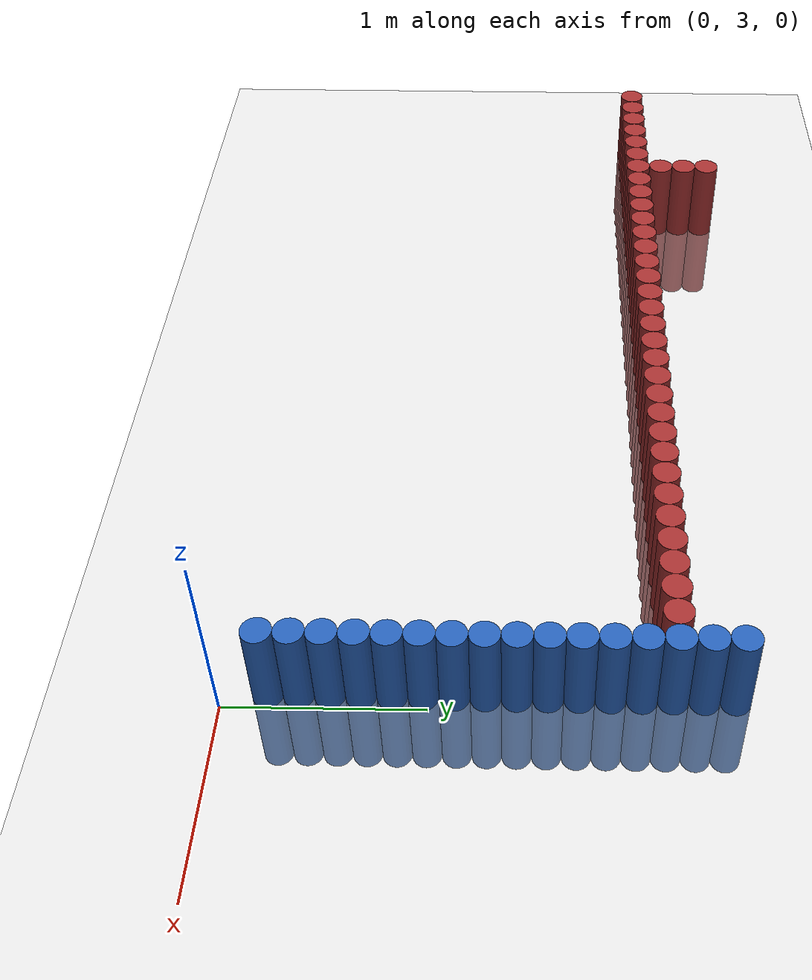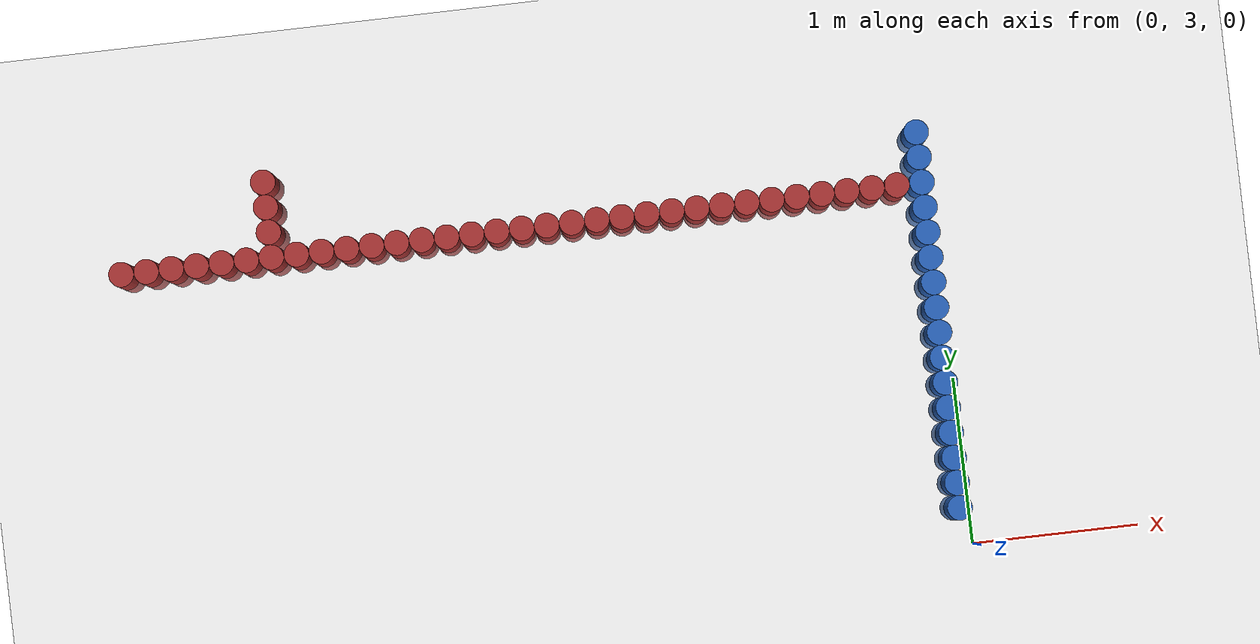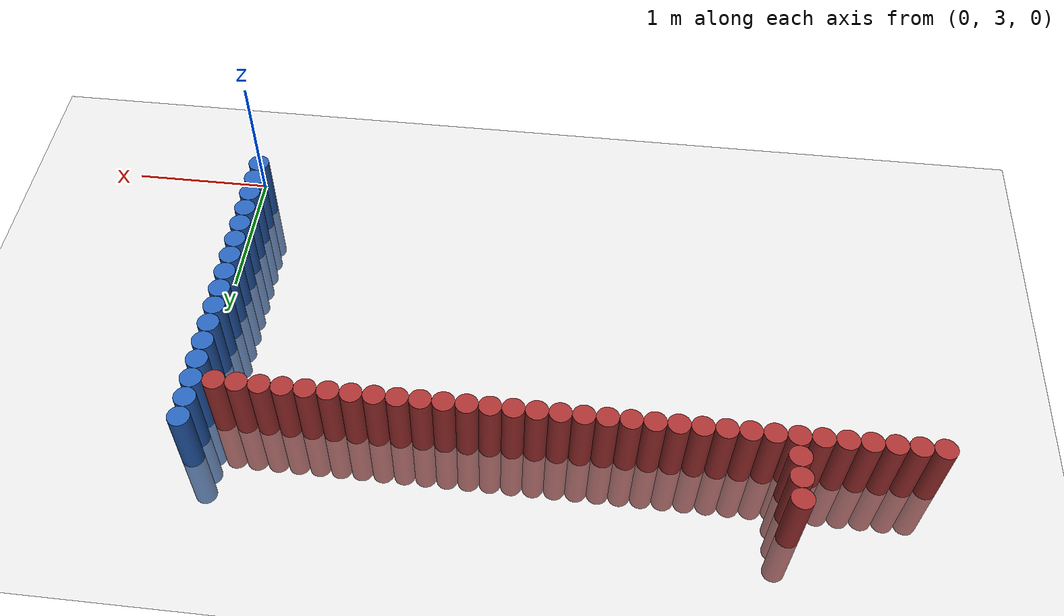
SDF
<sdf version="1.6">
 <world name="default">
  <model name="ground_plane">
   <static>1</static>
   <link name="link">
    <collision name="collision">
     <geometry><plane><normal>0 0 1</normal><size>100 100</size></plane></geometry>
     <surface><friction><ode><mu>100</mu><mu2>50</mu2></ode></friction></surface>
    </collision>
    <visual name="visual">
     <cast_shadows>0</cast_shadows>
     <geometry><plane><normal>0 0 1</normal><size>100 100</size></plane></geometry>
     <material>
      <script><uri>file://media/materials/scripts/gazebo.material</uri><name>Gazebo/Grey</name></script>
     </material>
    </visual>
   </link>
  </model>
  <model name="unit_cylinder_99">
   <static>1</static>
   <pose>-0.075000 3.225000 0.000000 0.000000 0.000000 0.000000</pose>
   <link name="link">
    <inertial>
     <mass>1</mass>
     <inertia><ixx>0.145833</ixx><ixy>0</ixy><ixz>0</ixz><iyy>0.145833</iyy><iyz>0</iyz><izz>0.125</izz></inertia>
    </inertial>
    <collision name="collision">
     <geometry><cylinder><radius>0.075000</radius><length>1</length></cylinder></geometry>
    </collision>
    <visual name="visual">
     <geometry><cylinder><radius>0.075000</radius><length>1</length></cylinder></geometry>
     <material>
      <ambient>0.152000 0.379000 0.720000 1</ambient>
      <diffuse>0.152000 0.379000 0.720000 1</diffuse>
     </material>
     <material>
      <script><name>Gazebo/Grey</name><uri>file://media/materials/scripts/gazebo.material</uri></script>
     </material>
    </visual>
   </link>
  </model>
  <model name="unit_cylinder_101">
   <static>1</static>
   <pose>-0.075000 3.375000 0.000000 0.000000 0.000000 0.000000</pose>
   <link name="link">
    <inertial>
     <mass>1</mass>
     <inertia><ixx>0.145833</ixx><ixy>0</ixy><ixz>0</ixz><iyy>0.145833</iyy><iyz>0</iyz><izz>0.125</izz></inertia>
    </inertial>
    <collision name="collision">
     <geometry><cylinder><radius>0.075000</radius><length>1</length></cylinder></geometry>
    </collision>
    <visual name="visual">
     <geometry><cylinder><radius>0.075000</radius><length>1</length></cylinder></geometry>
     <material>
      <ambient>0.152000 0.379000 0.720000 1</ambient>
      <diffuse>0.152000 0.379000 0.720000 1</diffuse>
     </material>
     <material>
      <script><name>Gazebo/Grey</name><uri>file://media/materials/scripts/gazebo.material</uri></script>
     </material>
    </visual>
   </link>
  </model>
  <model name="unit_cylinder_103">
   <static>1</static>
   <pose>-0.075000 3.525000 0.000000 0.000000 0.000000 0.000000</pose>
   <link name="link">
    <inertial>
     <mass>1</mass>
     <inertia><ixx>0.145833</ixx><ixy>0</ixy><ixz>0</ixz><iyy>0.145833</iyy><iyz>0</iyz><izz>0.125</izz></inertia>
    </inertial>
    <collision name="collision">
     <geometry><cylinder><radius>0.075000</radius><length>1</length></cylinder></geometry>
    </collision>
    <visual name="visual">
     <geometry><cylinder><radius>0.075000</radius><length>1</length></cylinder></geometry>
     <material>
      <ambient>0.152000 0.379000 0.720000 1</ambient>
      <diffuse>0.152000 0.379000 0.720000 1</diffuse>
     </material>
     <material>
      <script><name>Gazebo/Grey</name><uri>file://media/materials/scripts/gazebo.material</uri></script>
     </material>
    </visual>
   </link>
  </model>
  <model name="unit_cylinder_105">
   <static>1</static>
   <pose>-0.075000 3.675000 0.000000 0.000000 0.000000 0.000000</pose>
   <link name="link">
    <inertial>
     <mass>1</mass>
     <inertia><ixx>0.145833</ixx><ixy>0</ixy><ixz>0</ixz><iyy>0.145833</iyy><iyz>0</iyz><izz>0.125</izz></inertia>
    </inertial>
    <collision name="collision">
     <geometry><cylinder><radius>0.075000</radius><length>1</length></cylinder></geometry>
    </collision>
    <visual name="visual">
     <geometry><cylinder><radius>0.075000</radius><length>1</length></cylinder></geometry>
     <material>
      <ambient>0.152000 0.379000 0.720000 1</ambient>
      <diffuse>0.152000 0.379000 0.720000 1</diffuse>
     </material>
     <material>
      <script><name>Gazebo/Grey</name><uri>file://media/materials/scripts/gazebo.material</uri></script>
     </material>
    </visual>
   </link>
  </model>
  <model name="unit_cylinder_107">
   <static>1</static>
   <pose>-0.075000 3.825000 0.000000 0.000000 0.000000 0.000000</pose>
   <link name="link">
    <inertial>
     <mass>1</mass>
     <inertia><ixx>0.145833</ixx><ixy>0</ixy><ixz>0</ixz><iyy>0.145833</iyy><iyz>0</iyz><izz>0.125</izz></inertia>
    </inertial>
    <collision name="collision">
     <geometry><cylinder><radius>0.075000</radius><length>1</length></cylinder></geometry>
    </collision>
    <visual name="visual">
     <geometry><cylinder><radius>0.075000</radius><length>1</length></cylinder></geometry>
     <material>
      <ambient>0.152000 0.379000 0.720000 1</ambient>
      <diffuse>0.152000 0.379000 0.720000 1</diffuse>
     </material>
     <material>
      <script><name>Gazebo/Grey</name><uri>file://media/materials/scripts/gazebo.material</uri></script>
     </material>
    </visual>
   </link>
  </model>
  <model name="unit_cylinder_109">
   <static>1</static>
   <pose>-0.075000 3.975000 0.000000 0.000000 0.000000 0.000000</pose>
   <link name="link">
    <inertial>
     <mass>1</mass>
     <inertia><ixx>0.145833</ixx><ixy>0</ixy><ixz>0</ixz><iyy>0.145833</iyy><iyz>0</iyz><izz>0.125</izz></inertia>
    </inertial>
    <collision name="collision">
     <geometry><cylinder><radius>0.075000</radius><length>1</length></cylinder></geometry>
    </collision>
    <visual name="visual">
     <geometry><cylinder><radius>0.075000</radius><length>1</length></cylinder></geometry>
     <material>
      <ambient>0.152000 0.379000 0.720000 1</ambient>
      <diffuse>0.152000 0.379000 0.720000 1</diffuse>
     </material>
     <material>
      <script><name>Gazebo/Grey</name><uri>file://media/materials/scripts/gazebo.material</uri></script>
     </material>
    </visual>
   </link>
  </model>
  <model name="unit_cylinder_111">
   <static>1</static>
   <pose>-0.075000 4.125000 0.000000 0.000000 0.000000 0.000000</pose>
   <link name="link">
    <inertial>
     <mass>1</mass>
     <inertia><ixx>0.145833</ixx><ixy>0</ixy><ixz>0</ixz><iyy>0.145833</iyy><iyz>0</iyz><izz>0.125</izz></inertia>
    </inertial>
    <collision name="collision">
     <geometry><cylinder><radius>0.075000</radius><length>1</length></cylinder></geometry>
    </collision>
    <visual name="visual">
     <geometry><cylinder><radius>0.075000</radius><length>1</length></cylinder></geometry>
     <material>
      <ambient>0.152000 0.379000 0.720000 1</ambient>
      <diffuse>0.152000 0.379000 0.720000 1</diffuse>
     </material>
     <material>
      <script><name>Gazebo/Grey</name><uri>file://media/materials/scripts/gazebo.material</uri></script>
     </material>
    </visual>
   </link>
  </model>
  <model name="unit_cylinder_113">
   <static>1</static>
   <pose>-0.075000 4.275000 0.000000 0.000000 0.000000 0.000000</pose>
   <link name="link">
    <inertial>
     <mass>1</mass>
     <inertia><ixx>0.145833</ixx><ixy>0</ixy><ixz>0</ixz><iyy>0.145833</iyy><iyz>0</iyz><izz>0.125</izz></inertia>
    </inertial>
    <collision name="collision">
     <geometry><cylinder><radius>0.075000</radius><length>1</length></cylinder></geometry>
    </collision>
    <visual name="visual">
     <geometry><cylinder><radius>0.075000</radius><length>1</length></cylinder></geometry>
     <material>
      <ambient>0.152000 0.379000 0.720000 1</ambient>
      <diffuse>0.152000 0.379000 0.720000 1</diffuse>
     </material>
     <material>
      <script><name>Gazebo/Grey</name><uri>file://media/materials/scripts/gazebo.material</uri></script>
     </material>
    </visual>
   </link>
  </model>
  <model name="unit_cylinder_115">
   <static>1</static>
   <pose>-0.075000 4.425000 0.000000 0.000000 0.000000 0.000000</pose>
   <link name="link">
    <inertial>
     <mass>1</mass>
     <inertia><ixx>0.145833</ixx><ixy>0</ixy><ixz>0</ixz><iyy>0.145833</iyy><iyz>0</iyz><izz>0.125</izz></inertia>
    </inertial>
    <collision name="collision">
     <geometry><cylinder><radius>0.075000</radius><length>1</length></cylinder></geometry>
    </collision>
    <visual name="visual">
     <geometry><cylinder><radius>0.075000</radius><length>1</length></cylinder></geometry>
     <material>
      <ambient>0.152000 0.379000 0.720000 1</ambient>
      <diffuse>0.152000 0.379000 0.720000 1</diffuse>
     </material>
     <material>
      <script><name>Gazebo/Grey</name><uri>file://media/materials/scripts/gazebo.material</uri></script>
     </material>
    </visual>
   </link>
  </model>
  <model name="unit_cylinder_117">
   <static>1</static>
   <pose>-0.075000 4.575000 0.000000 0.000000 0.000000 0.000000</pose>
   <link name="link">
    <inertial>
     <mass>1</mass>
     <inertia><ixx>0.145833</ixx><ixy>0</ixy><ixz>0</ixz><iyy>0.145833</iyy><iyz>0</iyz><izz>0.125</izz></inertia>
    </inertial>
    <collision name="collision">
     <geometry><cylinder><radius>0.075000</radius><length>1</length></cylinder></geometry>
    </collision>
    <visual name="visual">
     <geometry><cylinder><radius>0.075000</radius><length>1</length></cylinder></geometry>
     <material>
      <ambient>0.152000 0.379000 0.720000 1</ambient>
      <diffuse>0.152000 0.379000 0.720000 1</diffuse>
     </material>
     <material>
      <script><name>Gazebo/Grey</name><uri>file://media/materials/scripts/gazebo.material</uri></script>
     </material>
    </visual>
   </link>
  </model>
  <model name="unit_cylinder_119">
   <static>1</static>
   <pose>-0.075000 4.725000 0.000000 0.000000 0.000000 0.000000</pose>
   <link name="link">
    <inertial>
     <mass>1</mass>
     <inertia><ixx>0.145833</ixx><ixy>0</ixy><ixz>0</ixz><iyy>0.145833</iyy><iyz>0</iyz><izz>0.125</izz></inertia>
    </inertial>
    <collision name="collision">
     <geometry><cylinder><radius>0.075000</radius><length>1</length></cylinder></geometry>
    </collision>
    <visual name="visual">
     <geometry><cylinder><radius>0.075000</radius><length>1</length></cylinder></geometry>
     <material>
      <ambient>0.152000 0.379000 0.720000 1</ambient>
      <diffuse>0.152000 0.379000 0.720000 1</diffuse>
     </material>
     <material>
      <script><name>Gazebo/Grey</name><uri>file://media/materials/scripts/gazebo.material</uri></script>
     </material>
    </visual>
   </link>
  </model>
  <model name="unit_cylinder_121">
   <static>1</static>
   <pose>-0.075000 4.875000 0.000000 0.000000 0.000000 0.000000</pose>
   <link name="link">
    <inertial>
     <mass>1</mass>
     <inertia><ixx>0.145833</ixx><ixy>0</ixy><ixz>0</ixz><iyy>0.145833</iyy><iyz>0</iyz><izz>0.125</izz></inertia>
    </inertial>
    <collision name="collision">
     <geometry><cylinder><radius>0.075000</radius><length>1</length></cylinder></geometry>
    </collision>
    <visual name="visual">
     <geometry><cylinder><radius>0.075000</radius><length>1</length></cylinder></geometry>
     <material>
      <ambient>0.152000 0.379000 0.720000 1</ambient>
      <diffuse>0.152000 0.379000 0.720000 1</diffuse>
     </material>
     <material>
      <script><name>Gazebo/Grey</name><uri>file://media/materials/scripts/gazebo.material</uri></script>
     </material>
    </visual>
   </link>
  </model>
  <model name="unit_cylinder_123">
   <static>1</static>
   <pose>-0.075000 5.025000 0.000000 0.000000 0.000000 0.000000</pose>
   <link name="link">
    <inertial>
     <mass>1</mass>
     <inertia><ixx>0.145833</ixx><ixy>0</ixy><ixz>0</ixz><iyy>0.145833</iyy><iyz>0</iyz><izz>0.125</izz></inertia>
    </inertial>
    <collision name="collision">
     <geometry><cylinder><radius>0.075000</radius><length>1</length></cylinder></geometry>
    </collision>
    <visual name="visual">
     <geometry><cylinder><radius>0.075000</radius><length>1</length></cylinder></geometry>
     <material>
      <ambient>0.152000 0.379000 0.720000 1</ambient>
      <diffuse>0.152000 0.379000 0.720000 1</diffuse>
     </material>
     <material>
      <script><name>Gazebo/Grey</name><uri>file://media/materials/scripts/gazebo.material</uri></script>
     </material>
    </visual>
   </link>
  </model>
  <model name="unit_cylinder_281">
   <static>1</static>
   <pose>-4.875000 5.175000 0.000000 0.000000 0.000000 0.000000</pose>
   <link name="link">
    <inertial>
     <mass>1</mass>
     <inertia><ixx>0.145833</ixx><ixy>0</ixy><ixz>0</ixz><iyy>0.145833</iyy><iyz>0</iyz><izz>0.125</izz></inertia>
    </inertial>
    <collision name="collision">
     <geometry><cylinder><radius>0.075000</radius><length>1</length></cylinder></geometry>
    </collision>
    <visual name="visual">
     <geometry><cylinder><radius>0.075000</radius><length>1</length></cylinder></geometry>
     <material>
      <ambient>0.648000 0.192000 0.192000 1</ambient>
      <diffuse>0.648000 0.192000 0.192000 1</diffuse>
     </material>
     <material>
      <script><name>Gazebo/Grey</name><uri>file://media/materials/scripts/gazebo.material</uri></script>
     </material>
    </visual>
   </link>
  </model>
  <model name="unit_cylinder_284">
   <static>1</static>
   <pose>-4.725000 5.175000 0.000000 0.000000 0.000000 0.000000</pose>
   <link name="link">
    <inertial>
     <mass>1</mass>
     <inertia><ixx>0.145833</ixx><ixy>0</ixy><ixz>0</ixz><iyy>0.145833</iyy><iyz>0</iyz><izz>0.125</izz></inertia>
    </inertial>
    <collision name="collision">
     <geometry><cylinder><radius>0.075000</radius><length>1</length></cylinder></geometry>
    </collision>
    <visual name="visual">
     <geometry><cylinder><radius>0.075000</radius><length>1</length></cylinder></geometry>
     <material>
      <ambient>0.648000 0.192000 0.192000 1</ambient>
      <diffuse>0.648000 0.192000 0.192000 1</diffuse>
     </material>
     <material>
      <script><name>Gazebo/Grey</name><uri>file://media/materials/scripts/gazebo.material</uri></script>
     </material>
    </visual>
   </link>
  </model>
  <model name="unit_cylinder_285">
   <static>1</static>
   <pose>-4.575000 5.175000 0.000000 0.000000 0.000000 0.000000</pose>
   <link name="link">
    <inertial>
     <mass>1</mass>
     <inertia><ixx>0.145833</ixx><ixy>0</ixy><ixz>0</ixz><iyy>0.145833</iyy><iyz>0</iyz><izz>0.125</izz></inertia>
    </inertial>
    <collision name="collision">
     <geometry><cylinder><radius>0.075000</radius><length>1</length></cylinder></geometry>
    </collision>
    <visual name="visual">
     <geometry><cylinder><radius>0.075000</radius><length>1</length></cylinder></geometry>
     <material>
      <ambient>0.648000 0.192000 0.192000 1</ambient>
      <diffuse>0.648000 0.192000 0.192000 1</diffuse>
     </material>
     <material>
      <script><name>Gazebo/Grey</name><uri>file://media/materials/scripts/gazebo.material</uri></script>
     </material>
    </visual>
   </link>
  </model>
  <model name="unit_cylinder_286">
   <static>1</static>
   <pose>-4.425000 5.175000 0.000000 0.000000 0.000000 0.000000</pose>
   <link name="link">
    <inertial>
     <mass>1</mass>
     <inertia><ixx>0.145833</ixx><ixy>0</ixy><ixz>0</ixz><iyy>0.145833</iyy><iyz>0</iyz><izz>0.125</izz></inertia>
    </inertial>
    <collision name="collision">
     <geometry><cylinder><radius>0.075000</radius><length>1</length></cylinder></geometry>
    </collision>
    <visual name="visual">
     <geometry><cylinder><radius>0.075000</radius><length>1</length></cylinder></geometry>
     <material>
      <ambient>0.648000 0.192000 0.192000 1</ambient>
      <diffuse>0.648000 0.192000 0.192000 1</diffuse>
     </material>
     <material>
      <script><name>Gazebo/Grey</name><uri>file://media/materials/scripts/gazebo.material</uri></script>
     </material>
    </visual>
   </link>
  </model>
  <model name="unit_cylinder_287">
   <static>1</static>
   <pose>-4.275000 5.175000 0.000000 0.000000 0.000000 0.000000</pose>
   <link name="link">
    <inertial>
     <mass>1</mass>
     <inertia><ixx>0.145833</ixx><ixy>0</ixy><ixz>0</ixz><iyy>0.145833</iyy><iyz>0</iyz><izz>0.125</izz></inertia>
    </inertial>
    <collision name="collision">
     <geometry><cylinder><radius>0.075000</radius><length>1</length></cylinder></geometry>
    </collision>
    <visual name="visual">
     <geometry><cylinder><radius>0.075000</radius><length>1</length></cylinder></geometry>
     <material>
      <ambient>0.648000 0.192000 0.192000 1</ambient>
      <diffuse>0.648000 0.192000 0.192000 1</diffuse>
     </material>
     <material>
      <script><name>Gazebo/Grey</name><uri>file://media/materials/scripts/gazebo.material</uri></script>
     </material>
    </visual>
   </link>
  </model>
  <model name="unit_cylinder_292">
   <static>1</static>
   <pose>-4.125000 5.175000 0.000000 0.000000 0.000000 0.000000</pose>
   <link name="link">
    <inertial>
     <mass>1</mass>
     <inertia><ixx>0.145833</ixx><ixy>0</ixy><ixz>0</ixz><iyy>0.145833</iyy><iyz>0</iyz><izz>0.125</izz></inertia>
    </inertial>
    <collision name="collision">
     <geometry><cylinder><radius>0.075000</radius><length>1</length></cylinder></geometry>
    </collision>
    <visual name="visual">
     <geometry><cylinder><radius>0.075000</radius><length>1</length></cylinder></geometry>
     <material>
      <ambient>0.648000 0.192000 0.192000 1</ambient>
      <diffuse>0.648000 0.192000 0.192000 1</diffuse>
     </material>
     <material>
      <script><name>Gazebo/Grey</name><uri>file://media/materials/scripts/gazebo.material</uri></script>
     </material>
    </visual>
   </link>
  </model>
  <model name="unit_cylinder_296">
   <static>1</static>
   <pose>-3.975000 5.175000 0.000000 0.000000 0.000000 0.000000</pose>
   <link name="link">
    <inertial>
     <mass>1</mass>
     <inertia><ixx>0.145833</ixx><ixy>0</ixy><ixz>0</ixz><iyy>0.145833</iyy><iyz>0</iyz><izz>0.125</izz></inertia>
    </inertial>
    <collision name="collision">
     <geometry><cylinder><radius>0.075000</radius><length>1</length></cylinder></geometry>
    </collision>
    <visual name="visual">
     <geometry><cylinder><radius>0.075000</radius><length>1</length></cylinder></geometry>
     <material>
      <ambient>0.648000 0.192000 0.192000 1</ambient>
      <diffuse>0.648000 0.192000 0.192000 1</diffuse>
     </material>
     <material>
      <script><name>Gazebo/Grey</name><uri>file://media/materials/scripts/gazebo.material</uri></script>
     </material>
    </visual>
   </link>
  </model>
  <model name="unit_cylinder_297">
   <static>1</static>
   <pose>-3.975000 5.325000 0.000000 0.000000 0.000000 0.000000</pose>
   <link name="link">
    <inertial>
     <mass>1</mass>
     <inertia><ixx>0.145833</ixx><ixy>0</ixy><ixz>0</ixz><iyy>0.145833</iyy><iyz>0</iyz><izz>0.125</izz></inertia>
    </inertial>
    <collision name="collision">
     <geometry><cylinder><radius>0.075000</radius><length>1</length></cylinder></geometry>
    </collision>
    <visual name="visual">
     <geometry><cylinder><radius>0.075000</radius><length>1</length></cylinder></geometry>
     <material>
      <ambient>0.648000 0.192000 0.192000 1</ambient>
      <diffuse>0.648000 0.192000 0.192000 1</diffuse>
     </material>
     <material>
      <script><name>Gazebo/Grey</name><uri>file://media/materials/scripts/gazebo.material</uri></script>
     </material>
    </visual>
   </link>
  </model>
  <model name="unit_cylinder_298">
   <static>1</static>
   <pose>-3.975000 5.475000 0.000000 0.000000 0.000000 0.000000</pose>
   <link name="link">
    <inertial>
     <mass>1</mass>
     <inertia><ixx>0.145833</ixx><ixy>0</ixy><ixz>0</ixz><iyy>0.145833</iyy><iyz>0</iyz><izz>0.125</izz></inertia>
    </inertial>
    <collision name="collision">
     <geometry><cylinder><radius>0.075000</radius><length>1</length></cylinder></geometry>
    </collision>
    <visual name="visual">
     <geometry><cylinder><radius>0.075000</radius><length>1</length></cylinder></geometry>
     <material>
      <ambient>0.648000 0.192000 0.192000 1</ambient>
      <diffuse>0.648000 0.192000 0.192000 1</diffuse>
     </material>
     <material>
      <script><name>Gazebo/Grey</name><uri>file://media/materials/scripts/gazebo.material</uri></script>
     </material>
    </visual>
   </link>
  </model>
  <model name="unit_cylinder_299">
   <static>1</static>
   <pose>-3.975000 5.625000 0.000000 0.000000 0.000000 0.000000</pose>
   <link name="link">
    <inertial>
     <mass>1</mass>
     <inertia><ixx>0.145833</ixx><ixy>0</ixy><ixz>0</ixz><iyy>0.145833</iyy><iyz>0</iyz><izz>0.125</izz></inertia>
    </inertial>
    <collision name="collision">
     <geometry><cylinder><radius>0.075000</radius><length>1</length></cylinder></geometry>
    </collision>
    <visual name="visual">
     <geometry><cylinder><radius>0.075000</radius><length>1</length></cylinder></geometry>
     <material>
      <ambient>0.648000 0.192000 0.192000 1</ambient>
      <diffuse>0.648000 0.192000 0.192000 1</diffuse>
     </material>
     <material>
      <script><name>Gazebo/Grey</name><uri>file://media/materials/scripts/gazebo.material</uri></script>
     </material>
    </visual>
   </link>
  </model>
  <model name="unit_cylinder_303">
   <static>1</static>
   <pose>-3.825000 5.175000 0.000000 0.000000 0.000000 0.000000</pose>
   <link name="link">
    <inertial>
     <mass>1</mass>
     <inertia><ixx>0.145833</ixx><ixy>0</ixy><ixz>0</ixz><iyy>0.145833</iyy><iyz>0</iyz><izz>0.125</izz></inertia>
    </inertial>
    <collision name="collision">
     <geometry><cylinder><radius>0.075000</radius><length>1</length></cylinder></geometry>
    </collision>
    <visual name="visual">
     <geometry><cylinder><radius>0.075000</radius><length>1</length></cylinder></geometry>
     <material>
      <ambient>0.648000 0.192000 0.192000 1</ambient>
      <diffuse>0.648000 0.192000 0.192000 1</diffuse>
     </material>
     <material>
      <script><name>Gazebo/Grey</name><uri>file://media/materials/scripts/gazebo.material</uri></script>
     </material>
    </visual>
   </link>
  </model>
  <model name="unit_cylinder_308">
   <static>1</static>
   <pose>-3.675000 5.175000 0.000000 0.000000 0.000000 0.000000</pose>
   <link name="link">
    <inertial>
     <mass>1</mass>
     <inertia><ixx>0.145833</ixx><ixy>0</ixy><ixz>0</ixz><iyy>0.145833</iyy><iyz>0</iyz><izz>0.125</izz></inertia>
    </inertial>
    <collision name="collision">
     <geometry><cylinder><radius>0.075000</radius><length>1</length></cylinder></geometry>
    </collision>
    <visual name="visual">
     <geometry><cylinder><radius>0.075000</radius><length>1</length></cylinder></geometry>
     <material>
      <ambient>0.648000 0.192000 0.192000 1</ambient>
      <diffuse>0.648000 0.192000 0.192000 1</diffuse>
     </material>
     <material>
      <script><name>Gazebo/Grey</name><uri>file://media/materials/scripts/gazebo.material</uri></script>
     </material>
    </visual>
   </link>
  </model>
  <model name="unit_cylinder_313">
   <static>1</static>
   <pose>-3.525000 5.175000 0.000000 0.000000 0.000000 0.000000</pose>
   <link name="link">
    <inertial>
     <mass>1</mass>
     <inertia><ixx>0.145833</ixx><ixy>0</ixy><ixz>0</ixz><iyy>0.145833</iyy><iyz>0</iyz><izz>0.125</izz></inertia>
    </inertial>
    <collision name="collision">
     <geometry><cylinder><radius>0.075000</radius><length>1</length></cylinder></geometry>
    </collision>
    <visual name="visual">
     <geometry><cylinder><radius>0.075000</radius><length>1</length></cylinder></geometry>
     <material>
      <ambient>0.648000 0.192000 0.192000 1</ambient>
      <diffuse>0.648000 0.192000 0.192000 1</diffuse>
     </material>
     <material>
      <script><name>Gazebo/Grey</name><uri>file://media/materials/scripts/gazebo.material</uri></script>
     </material>
    </visual>
   </link>
  </model>
  <model name="unit_cylinder_335">
   <static>1</static>
   <pose>-3.375000 5.175000 0.000000 0.000000 0.000000 0.000000</pose>
   <link name="link">
    <inertial>
     <mass>1</mass>
     <inertia><ixx>0.145833</ixx><ixy>0</ixy><ixz>0</ixz><iyy>0.145833</iyy><iyz>0</iyz><izz>0.125</izz></inertia>
    </inertial>
    <collision name="collision">
     <geometry><cylinder><radius>0.075000</radius><length>1</length></cylinder></geometry>
    </collision>
    <visual name="visual">
     <geometry><cylinder><radius>0.075000</radius><length>1</length></cylinder></geometry>
     <material>
      <ambient>0.648000 0.192000 0.192000 1</ambient>
      <diffuse>0.648000 0.192000 0.192000 1</diffuse>
     </material>
     <material>
      <script><name>Gazebo/Grey</name><uri>file://media/materials/scripts/gazebo.material</uri></script>
     </material>
    </visual>
   </link>
  </model>
  <model name="unit_cylinder_337">
   <static>1</static>
   <pose>-3.225000 5.175000 0.000000 0.000000 0.000000 0.000000</pose>
   <link name="link">
    <inertial>
     <mass>1</mass>
     <inertia><ixx>0.145833</ixx><ixy>0</ixy><ixz>0</ixz><iyy>0.145833</iyy><iyz>0</iyz><izz>0.125</izz></inertia>
    </inertial>
    <collision name="collision">
     <geometry><cylinder><radius>0.075000</radius><length>1</length></cylinder></geometry>
    </collision>
    <visual name="visual">
     <geometry><cylinder><radius>0.075000</radius><length>1</length></cylinder></geometry>
     <material>
      <ambient>0.648000 0.192000 0.192000 1</ambient>
      <diffuse>0.648000 0.192000 0.192000 1</diffuse>
     </material>
     <material>
      <script><name>Gazebo/Grey</name><uri>file://media/materials/scripts/gazebo.material</uri></script>
     </material>
    </visual>
   </link>
  </model>
  <model name="unit_cylinder_339">
   <static>1</static>
   <pose>-3.075000 5.175000 0.000000 0.000000 0.000000 0.000000</pose>
   <link name="link">
    <inertial>
     <mass>1</mass>
     <inertia><ixx>0.145833</ixx><ixy>0</ixy><ixz>0</ixz><iyy>0.145833</iyy><iyz>0</iyz><izz>0.125</izz></inertia>
    </inertial>
    <collision name="collision">
     <geometry><cylinder><radius>0.075000</radius><length>1</length></cylinder></geometry>
    </collision>
    <visual name="visual">
     <geometry><cylinder><radius>0.075000</radius><length>1</length></cylinder></geometry>
     <material>
      <ambient>0.648000 0.192000 0.192000 1</ambient>
      <diffuse>0.648000 0.192000 0.192000 1</diffuse>
     </material>
     <material>
      <script><name>Gazebo/Grey</name><uri>file://media/materials/scripts/gazebo.material</uri></script>
     </material>
    </visual>
   </link>
  </model>
  <model name="unit_cylinder_341">
   <static>1</static>
   <pose>-2.925000 5.175000 0.000000 0.000000 0.000000 0.000000</pose>
   <link name="link">
    <inertial>
     <mass>1</mass>
     <inertia><ixx>0.145833</ixx><ixy>0</ixy><ixz>0</ixz><iyy>0.145833</iyy><iyz>0</iyz><izz>0.125</izz></inertia>
    </inertial>
    <collision name="collision">
     <geometry><cylinder><radius>0.075000</radius><length>1</length></cylinder></geometry>
    </collision>
    <visual name="visual">
     <geometry><cylinder><radius>0.075000</radius><length>1</length></cylinder></geometry>
     <material>
      <ambient>0.648000 0.192000 0.192000 1</ambient>
      <diffuse>0.648000 0.192000 0.192000 1</diffuse>
     </material>
     <material>
      <script><name>Gazebo/Grey</name><uri>file://media/materials/scripts/gazebo.material</uri></script>
     </material>
    </visual>
   </link>
  </model>
  <model name="unit_cylinder_343">
   <static>1</static>
   <pose>-2.775000 5.175000 0.000000 0.000000 0.000000 0.000000</pose>
   <link name="link">
    <inertial>
     <mass>1</mass>
     <inertia><ixx>0.145833</ixx><ixy>0</ixy><ixz>0</ixz><iyy>0.145833</iyy><iyz>0</iyz><izz>0.125</izz></inertia>
    </inertial>
    <collision name="collision">
     <geometry><cylinder><radius>0.075000</radius><length>1</length></cylinder></geometry>
    </collision>
    <visual name="visual">
     <geometry><cylinder><radius>0.075000</radius><length>1</length></cylinder></geometry>
     <material>
      <ambient>0.648000 0.192000 0.192000 1</ambient>
      <diffuse>0.648000 0.192000 0.192000 1</diffuse>
     </material>
     <material>
      <script><name>Gazebo/Grey</name><uri>file://media/materials/scripts/gazebo.material</uri></script>
     </material>
    </visual>
   </link>
  </model>
  <model name="unit_cylinder_345">
   <static>1</static>
   <pose>-2.625000 5.175000 0.000000 0.000000 0.000000 0.000000</pose>
   <link name="link">
    <inertial>
     <mass>1</mass>
     <inertia><ixx>0.145833</ixx><ixy>0</ixy><ixz>0</ixz><iyy>0.145833</iyy><iyz>0</iyz><izz>0.125</izz></inertia>
    </inertial>
    <collision name="collision">
     <geometry><cylinder><radius>0.075000</radius><length>1</length></cylinder></geometry>
    </collision>
    <visual name="visual">
     <geometry><cylinder><radius>0.075000</radius><length>1</length></cylinder></geometry>
     <material>
      <ambient>0.648000 0.192000 0.192000 1</ambient>
      <diffuse>0.648000 0.192000 0.192000 1</diffuse>
     </material>
     <material>
      <script><name>Gazebo/Grey</name><uri>file://media/materials/scripts/gazebo.material</uri></script>
     </material>
    </visual>
   </link>
  </model>
  <model name="unit_cylinder_347">
   <static>1</static>
   <pose>-2.475000 5.175000 0.000000 0.000000 0.000000 0.000000</pose>
   <link name="link">
    <inertial>
     <mass>1</mass>
     <inertia><ixx>0.145833</ixx><ixy>0</ixy><ixz>0</ixz><iyy>0.145833</iyy><iyz>0</iyz><izz>0.125</izz></inertia>
    </inertial>
    <collision name="collision">
     <geometry><cylinder><radius>0.075000</radius><length>1</length></cylinder></geometry>
    </collision>
    <visual name="visual">
     <geometry><cylinder><radius>0.075000</radius><length>1</length></cylinder></geometry>
     <material>
      <ambient>0.648000 0.192000 0.192000 1</ambient>
      <diffuse>0.648000 0.192000 0.192000 1</diffuse>
     </material>
     <material>
      <script><name>Gazebo/Grey</name><uri>file://media/materials/scripts/gazebo.material</uri></script>
     </material>
    </visual>
   </link>
  </model>
  <model name="unit_cylinder_349">
   <static>1</static>
   <pose>-2.325000 5.175000 0.000000 0.000000 0.000000 0.000000</pose>
   <link name="link">
    <inertial>
     <mass>1</mass>
     <inertia><ixx>0.145833</ixx><ixy>0</ixy><ixz>0</ixz><iyy>0.145833</iyy><iyz>0</iyz><izz>0.125</izz></inertia>
    </inertial>
    <collision name="collision">
     <geometry><cylinder><radius>0.075000</radius><length>1</length></cylinder></geometry>
    </collision>
    <visual name="visual">
     <geometry><cylinder><radius>0.075000</radius><length>1</length></cylinder></geometry>
     <material>
      <ambient>0.648000 0.192000 0.192000 1</ambient>
      <diffuse>0.648000 0.192000 0.192000 1</diffuse>
     </material>
     <material>
      <script><name>Gazebo/Grey</name><uri>file://media/materials/scripts/gazebo.material</uri></script>
     </material>
    </visual>
   </link>
  </model>
  <model name="unit_cylinder_351">
   <static>1</static>
   <pose>-2.175000 5.175000 0.000000 0.000000 0.000000 0.000000</pose>
   <link name="link">
    <inertial>
     <mass>1</mass>
     <inertia><ixx>0.145833</ixx><ixy>0</ixy><ixz>0</ixz><iyy>0.145833</iyy><iyz>0</iyz><izz>0.125</izz></inertia>
    </inertial>
    <collision name="collision">
     <geometry><cylinder><radius>0.075000</radius><length>1</length></cylinder></geometry>
    </collision>
    <visual name="visual">
     <geometry><cylinder><radius>0.075000</radius><length>1</length></cylinder></geometry>
     <material>
      <ambient>0.648000 0.192000 0.192000 1</ambient>
      <diffuse>0.648000 0.192000 0.192000 1</diffuse>
     </material>
     <material>
      <script><name>Gazebo/Grey</name><uri>file://media/materials/scripts/gazebo.material</uri></script>
     </material>
    </visual>
   </link>
  </model>
  <model name="unit_cylinder_353">
   <static>1</static>
   <pose>-2.025000 5.175000 0.000000 0.000000 0.000000 0.000000</pose>
   <link name="link">
    <inertial>
     <mass>1</mass>
     <inertia><ixx>0.145833</ixx><ixy>0</ixy><ixz>0</ixz><iyy>0.145833</iyy><iyz>0</iyz><izz>0.125</izz></inertia>
    </inertial>
    <collision name="collision">
     <geometry><cylinder><radius>0.075000</radius><length>1</length></cylinder></geometry>
    </collision>
    <visual name="visual">
     <geometry><cylinder><radius>0.075000</radius><length>1</length></cylinder></geometry>
     <material>
      <ambient>0.648000 0.192000 0.192000 1</ambient>
      <diffuse>0.648000 0.192000 0.192000 1</diffuse>
     </material>
     <material>
      <script><name>Gazebo/Grey</name><uri>file://media/materials/scripts/gazebo.material</uri></script>
     </material>
    </visual>
   </link>
  </model>
  <model name="unit_cylinder_355">
   <static>1</static>
   <pose>-1.875000 5.175000 0.000000 0.000000 0.000000 0.000000</pose>
   <link name="link">
    <inertial>
     <mass>1</mass>
     <inertia><ixx>0.145833</ixx><ixy>0</ixy><ixz>0</ixz><iyy>0.145833</iyy><iyz>0</iyz><izz>0.125</izz></inertia>
    </inertial>
    <collision name="collision">
     <geometry><cylinder><radius>0.075000</radius><length>1</length></cylinder></geometry>
    </collision>
    <visual name="visual">
     <geometry><cylinder><radius>0.075000</radius><length>1</length></cylinder></geometry>
     <material>
      <ambient>0.648000 0.192000 0.192000 1</ambient>
      <diffuse>0.648000 0.192000 0.192000 1</diffuse>
     </material>
     <material>
      <script><name>Gazebo/Grey</name><uri>file://media/materials/scripts/gazebo.material</uri></script>
     </material>
    </visual>
   </link>
  </model>
  <model name="unit_cylinder_357">
   <static>1</static>
   <pose>-1.725000 5.175000 0.000000 0.000000 0.000000 0.000000</pose>
   <link name="link">
    <inertial>
     <mass>1</mass>
     <inertia><ixx>0.145833</ixx><ixy>0</ixy><ixz>0</ixz><iyy>0.145833</iyy><iyz>0</iyz><izz>0.125</izz></inertia>
    </inertial>
    <collision name="collision">
     <geometry><cylinder><radius>0.075000</radius><length>1</length></cylinder></geometry>
    </collision>
    <visual name="visual">
     <geometry><cylinder><radius>0.075000</radius><length>1</length></cylinder></geometry>
     <material>
      <ambient>0.648000 0.192000 0.192000 1</ambient>
      <diffuse>0.648000 0.192000 0.192000 1</diffuse>
     </material>
     <material>
      <script><name>Gazebo/Grey</name><uri>file://media/materials/scripts/gazebo.material</uri></script>
     </material>
    </visual>
   </link>
  </model>
  <model name="unit_cylinder_359">
   <static>1</static>
   <pose>-1.575000 5.175000 0.000000 0.000000 0.000000 0.000000</pose>
   <link name="link">
    <inertial>
     <mass>1</mass>
     <inertia><ixx>0.145833</ixx><ixy>0</ixy><ixz>0</ixz><iyy>0.145833</iyy><iyz>0</iyz><izz>0.125</izz></inertia>
    </inertial>
    <collision name="collision">
     <geometry><cylinder><radius>0.075000</radius><length>1</length></cylinder></geometry>
    </collision>
    <visual name="visual">
     <geometry><cylinder><radius>0.075000</radius><length>1</length></cylinder></geometry>
     <material>
      <ambient>0.648000 0.192000 0.192000 1</ambient>
      <diffuse>0.648000 0.192000 0.192000 1</diffuse>
     </material>
     <material>
      <script><name>Gazebo/Grey</name><uri>file://media/materials/scripts/gazebo.material</uri></script>
     </material>
    </visual>
   </link>
  </model>
  <model name="unit_cylinder_361">
   <static>1</static>
   <pose>-1.425000 5.175000 0.000000 0.000000 0.000000 0.000000</pose>
   <link name="link">
    <inertial>
     <mass>1</mass>
     <inertia><ixx>0.145833</ixx><ixy>0</ixy><ixz>0</ixz><iyy>0.145833</iyy><iyz>0</iyz><izz>0.125</izz></inertia>
    </inertial>
    <collision name="collision">
     <geometry><cylinder><radius>0.075000</radius><length>1</length></cylinder></geometry>
    </collision>
    <visual name="visual">
     <geometry><cylinder><radius>0.075000</radius><length>1</length></cylinder></geometry>
     <material>
      <ambient>0.648000 0.192000 0.192000 1</ambient>
      <diffuse>0.648000 0.192000 0.192000 1</diffuse>
     </material>
     <material>
      <script><name>Gazebo/Grey</name><uri>file://media/materials/scripts/gazebo.material</uri></script>
     </material>
    </visual>
   </link>
  </model>
  <model name="unit_cylinder_363">
   <static>1</static>
   <pose>-1.275000 5.175000 0.000000 0.000000 0.000000 0.000000</pose>
   <link name="link">
    <inertial>
     <mass>1</mass>
     <inertia><ixx>0.145833</ixx><ixy>0</ixy><ixz>0</ixz><iyy>0.145833</iyy><iyz>0</iyz><izz>0.125</izz></inertia>
    </inertial>
    <collision name="collision">
     <geometry><cylinder><radius>0.075000</radius><length>1</length></cylinder></geometry>
    </collision>
    <visual name="visual">
     <geometry><cylinder><radius>0.075000</radius><length>1</length></cylinder></geometry>
     <material>
      <ambient>0.648000 0.192000 0.192000 1</ambient>
      <diffuse>0.648000 0.192000 0.192000 1</diffuse>
     </material>
     <material>
      <script><name>Gazebo/Grey</name><uri>file://media/materials/scripts/gazebo.material</uri></script>
     </material>
    </visual>
   </link>
  </model>
  <model name="unit_cylinder_365">
   <static>1</static>
   <pose>-1.125000 5.175000 0.000000 0.000000 0.000000 0.000000</pose>
   <link name="link">
    <inertial>
     <mass>1</mass>
     <inertia><ixx>0.145833</ixx><ixy>0</ixy><ixz>0</ixz><iyy>0.145833</iyy><iyz>0</iyz><izz>0.125</izz></inertia>
    </inertial>
    <collision name="collision">
     <geometry><cylinder><radius>0.075000</radius><length>1</length></cylinder></geometry>
    </collision>
    <visual name="visual">
     <geometry><cylinder><radius>0.075000</radius><length>1</length></cylinder></geometry>
     <material>
      <ambient>0.648000 0.192000 0.192000 1</ambient>
      <diffuse>0.648000 0.192000 0.192000 1</diffuse>
     </material>
     <material>
      <script><name>Gazebo/Grey</name><uri>file://media/materials/scripts/gazebo.material</uri></script>
     </material>
    </visual>
   </link>
  </model>
  <model name="unit_cylinder_367">
   <static>1</static>
   <pose>-0.975000 5.175000 0.000000 0.000000 0.000000 0.000000</pose>
   <link name="link">
    <inertial>
     <mass>1</mass>
     <inertia><ixx>0.145833</ixx><ixy>0</ixy><ixz>0</ixz><iyy>0.145833</iyy><iyz>0</iyz><izz>0.125</izz></inertia>
    </inertial>
    <collision name="collision">
     <geometry><cylinder><radius>0.075000</radius><length>1</length></cylinder></geometry>
    </collision>
    <visual name="visual">
     <geometry><cylinder><radius>0.075000</radius><length>1</length></cylinder></geometry>
     <material>
      <ambient>0.648000 0.192000 0.192000 1</ambient>
      <diffuse>0.648000 0.192000 0.192000 1</diffuse>
     </material>
     <material>
      <script><name>Gazebo/Grey</name><uri>file://media/materials/scripts/gazebo.material</uri></script>
     </material>
    </visual>
   </link>
  </model>
  <model name="unit_cylinder_369">
   <static>1</static>
   <pose>-0.825000 5.175000 0.000000 0.000000 0.000000 0.000000</pose>
   <link name="link">
    <inertial>
     <mass>1</mass>
     <inertia><ixx>0.145833</ixx><ixy>0</ixy><ixz>0</ixz><iyy>0.145833</iyy><iyz>0</iyz><izz>0.125</izz></inertia>
    </inertial>
    <collision name="collision">
     <geometry><cylinder><radius>0.075000</radius><length>1</length></cylinder></geometry>
    </collision>
    <visual name="visual">
     <geometry><cylinder><radius>0.075000</radius><length>1</length></cylinder></geometry>
     <material>
      <ambient>0.648000 0.192000 0.192000 1</ambient>
      <diffuse>0.648000 0.192000 0.192000 1</diffuse>
     </material>
     <material>
      <script><name>Gazebo/Grey</name><uri>file://media/materials/scripts/gazebo.material</uri></script>
     </material>
    </visual>
   </link>
  </model>
  <model name="unit_cylinder_371">
   <static>1</static>
   <pose>-0.675000 5.175000 0.000000 0.000000 0.000000 0.000000</pose>
   <link name="link">
    <inertial>
     <mass>1</mass>
     <inertia><ixx>0.145833</ixx><ixy>0</ixy><ixz>0</ixz><iyy>0.145833</iyy><iyz>0</iyz><izz>0.125</izz></inertia>
    </inertial>
    <collision name="collision">
     <geometry><cylinder><radius>0.075000</radius><length>1</length></cylinder></geometry>
    </collision>
    <visual name="visual">
     <geometry><cylinder><radius>0.075000</radius><length>1</length></cylinder></geometry>
     <material>
      <ambient>0.648000 0.192000 0.192000 1</ambient>
      <diffuse>0.648000 0.192000 0.192000 1</diffuse>
     </material>
     <material>
      <script><name>Gazebo/Grey</name><uri>file://media/materials/scripts/gazebo.material</uri></script>
     </material>
    </visual>
   </link>
  </model>
  <model name="unit_cylinder_373">
   <static>1</static>
   <pose>-0.525000 5.175000 0.000000 0.000000 0.000000 0.000000</pose>
   <link name="link">
    <inertial>
     <mass>1</mass>
     <inertia><ixx>0.145833</ixx><ixy>0</ixy><ixz>0</ixz><iyy>0.145833</iyy><iyz>0</iyz><izz>0.125</izz></inertia>
    </inertial>
    <collision name="collision">
     <geometry><cylinder><radius>0.075000</radius><length>1</length></cylinder></geometry>
    </collision>
    <visual name="visual">
     <geometry><cylinder><radius>0.075000</radius><length>1</length></cylinder></geometry>
     <material>
      <ambient>0.648000 0.192000 0.192000 1</ambient>
      <diffuse>0.648000 0.192000 0.192000 1</diffuse>
     </material>
     <material>
      <script><name>Gazebo/Grey</name><uri>file://media/materials/scripts/gazebo.material</uri></script>
     </material>
    </visual>
   </link>
  </model>
  <model name="unit_cylinder_375">
   <static>1</static>
   <pose>-0.375000 5.175000 0.000000 0.000000 0.000000 0.000000</pose>
   <link name="link">
    <inertial>
     <mass>1</mass>
     <inertia><ixx>0.145833</ixx><ixy>0</ixy><ixz>0</ixz><iyy>0.145833</iyy><iyz>0</iyz><izz>0.125</izz></inertia>
    </inertial>
    <collision name="collision">
     <geometry><cylinder><radius>0.075000</radius><length>1</length></cylinder></geometry>
    </collision>
    <visual name="visual">
     <geometry><cylinder><radius>0.075000</radius><length>1</length></cylinder></geometry>
     <material>
      <ambient>0.648000 0.192000 0.192000 1</ambient>
      <diffuse>0.648000 0.192000 0.192000 1</diffuse>
     </material>
     <material>
      <script><name>Gazebo/Grey</name><uri>file://media/materials/scripts/gazebo.material</uri></script>
     </material>
    </visual>
   </link>
  </model>
  <model name="unit_cylinder_377">
   <static>1</static>
   <pose>-0.225000 5.175000 0.000000 0.000000 0.000000 0.000000</pose>
   <link name="link">
    <inertial>
     <mass>1</mass>
     <inertia><ixx>0.145833</ixx><ixy>0</ixy><ixz>0</ixz><iyy>0.145833</iyy><iyz>0</iyz><izz>0.125</izz></inertia>
    </inertial>
    <collision name="collision">
     <geometry><cylinder><radius>0.075000</radius><length>1</length></cylinder></geometry>
    </collision>
    <visual name="visual">
     <geometry><cylinder><radius>0.075000</radius><length>1</length></cylinder></geometry>
     <material>
      <ambient>0.648000 0.192000 0.192000 1</ambient>
      <diffuse>0.648000 0.192000 0.192000 1</diffuse>
     </material>
     <material>
      <script><name>Gazebo/Grey</name><uri>file://media/materials/scripts/gazebo.material</uri></script>
     </material>
    </visual>
   </link>
  </model>
  <model name="unit_cylinder_379">
   <static>1</static>
   <pose>-0.075000 5.175000 0.000000 0.000000 0.000000 0.000000</pose>
   <link name="link">
    <inertial>
     <mass>1</mass>
     <inertia><ixx>0.145833</ixx><ixy>0</ixy><ixz>0</ixz><iyy>0.145833</iyy><iyz>0</iyz><izz>0.125</izz></inertia>
    </inertial>
    <collision name="collision">
     <geometry><cylinder><radius>0.075000</radius><length>1</length></cylinder></geometry>
    </collision>
    <visual name="visual">
     <geometry><cylinder><radius>0.075000</radius><length>1</length></cylinder></geometry>
     <material>
      <ambient>0.152000 0.379000 0.720000 1</ambient>
      <diffuse>0.152000 0.379000 0.720000 1</diffuse>
     </material>
     <material>
      <script><name>Gazebo/Grey</name><uri>file://media/materials/scripts/gazebo.material</uri></script>
     </material>
    </visual>
   </link>
  </model>
  <model name="unit_cylinder_380">
   <static>1</static>
   <pose>-0.075000 5.325000 0.000000 0.000000 0.000000 0.000000</pose>
   <link name="link">
    <inertial>
     <mass>1</mass>
     <inertia><ixx>0.145833</ixx><ixy>0</ixy><ixz>0</ixz><iyy>0.145833</iyy><iyz>0</iyz><izz>0.125</izz></inertia>
    </inertial>
    <collision name="collision">
     <geometry><cylinder><radius>0.075000</radius><length>1</length></cylinder></geometry>
    </collision>
    <visual name="visual">
     <geometry><cylinder><radius>0.075000</radius><length>1</length></cylinder></geometry>
     <material>
      <ambient>0.152000 0.379000 0.720000 1</ambient>
      <diffuse>0.152000 0.379000 0.720000 1</diffuse>
     </material>
     <material>
      <script><name>Gazebo/Grey</name><uri>file://media/materials/scripts/gazebo.material</uri></script>
     </material>
    </visual>
   </link>
  </model>
  <model name="unit_cylinder_381">
   <static>1</static>
   <pose>-0.075000 5.475000 0.000000 0.000000 0.000000 0.000000</pose>
   <link name="link">
    <inertial>
     <mass>1</mass>
     <inertia><ixx>0.145833</ixx><ixy>0</ixy><ixz>0</ixz><iyy>0.145833</iyy><iyz>0</iyz><izz>0.125</izz></inertia>
    </inertial>
    <collision name="collision">
     <geometry><cylinder><radius>0.075000</radius><length>1</length></cylinder></geometry>
    </collision>
    <visual name="visual">
     <geometry><cylinder><radius>0.075000</radius><length>1</length></cylinder></geometry>
     <material>
      <ambient>0.152000 0.379000 0.720000 1</ambient>
      <diffuse>0.152000 0.379000 0.720000 1</diffuse>
     </material>
     <material>
      <script><name>Gazebo/Grey</name><uri>file://media/materials/scripts/gazebo.material</uri></script>
     </material>
    </visual>
   </link>
  </model>
 </world>
</sdf>
